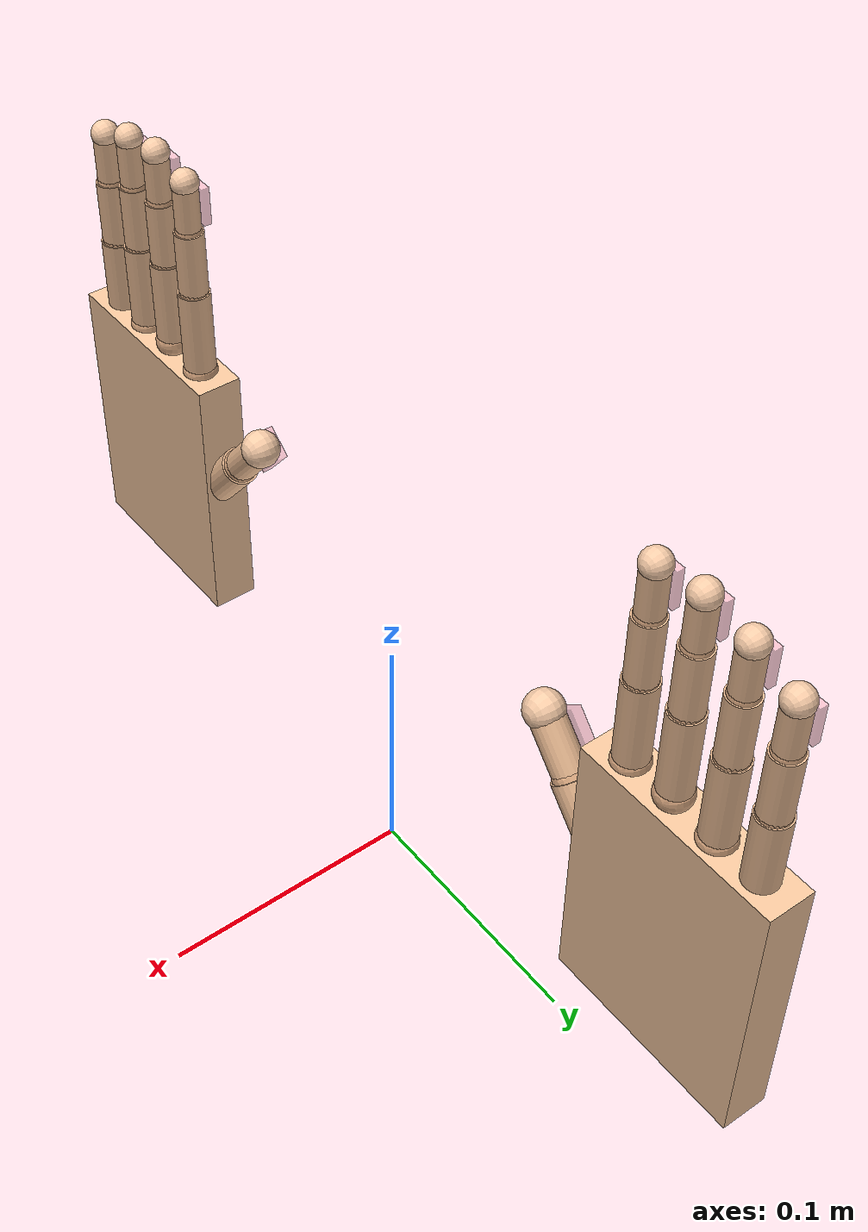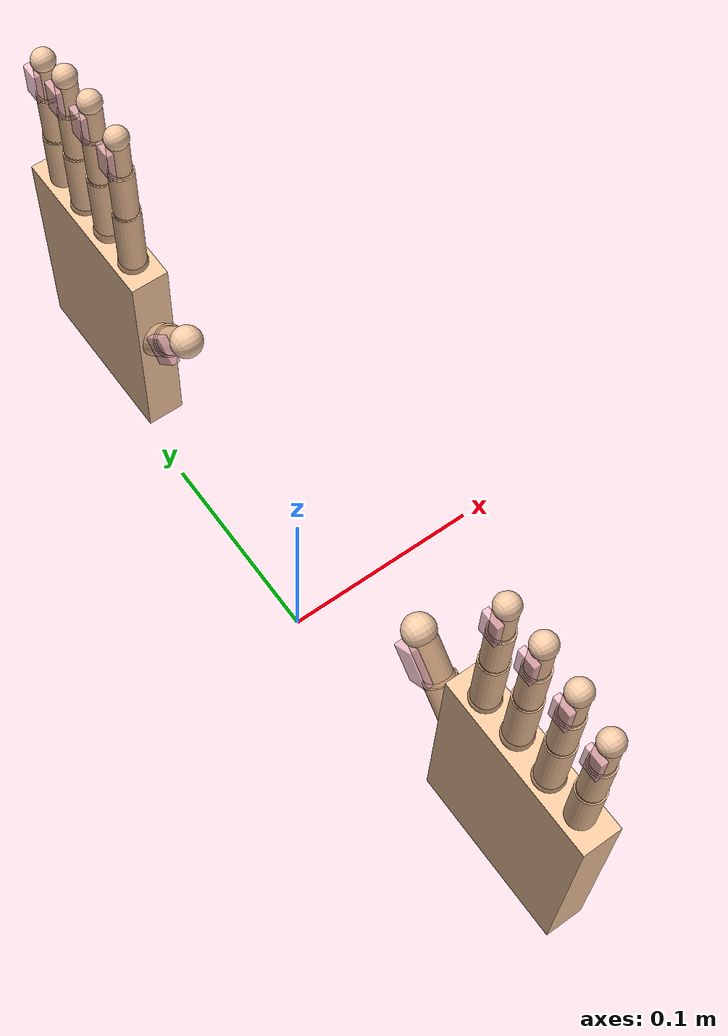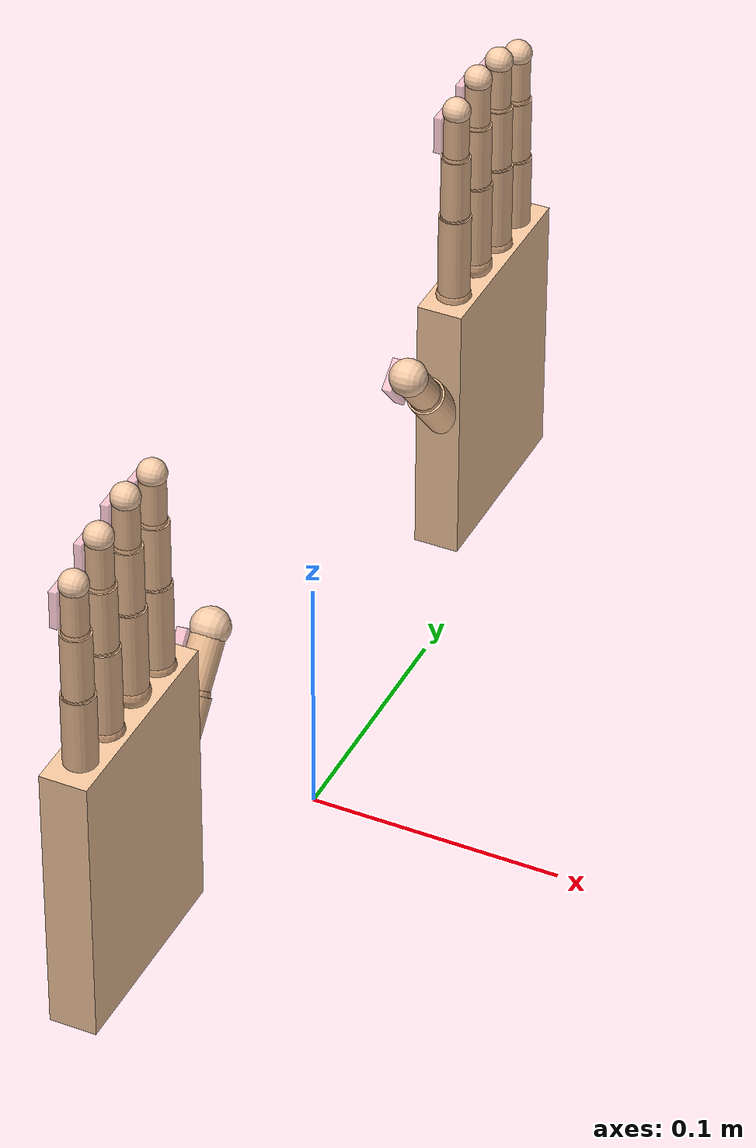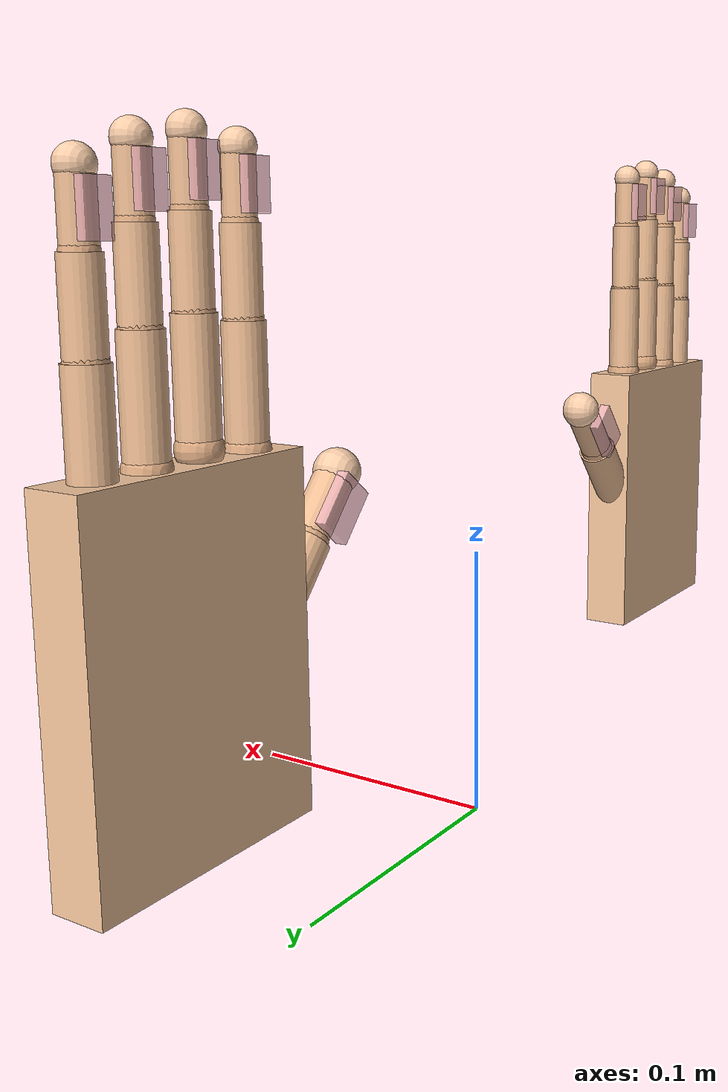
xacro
<?xml version="1.0"?>
<robot name="dual_robotic_hands" xmlns:xacro="http://wiki.ros.org/xacro">

  <!-- Palm dimensions -->
  <xacro:property name="hand_width"  value="0.082" />
  <xacro:property name="hand_length" value="0.110" />
  <xacro:property name="hand_height" value="0.018" />

  <!-- Finger segment lengths -->
  <xacro:property name="proximal_length" value="0.036" />
  <xacro:property name="middle_length"   value="0.026" />
  <xacro:property name="distal_length"   value="0.020" />

  <!-- Finger radii (tapers toward tip) -->
  <xacro:property name="finger_r0" value="0.0068" />   <!-- base knuckle -->
  <xacro:property name="finger_r1" value="0.0062" />   <!-- proximal segment -->
  <xacro:property name="finger_r2" value="0.0056" />   <!-- middle segment -->
  <xacro:property name="finger_r3" value="0.0048" />   <!-- distal segment -->

  <!-- Thumb dimensions -->
  <xacro:property name="thumb_proximal_length" value="0.032" />
  <xacro:property name="thumb_distal_length"   value="0.024" />
  <xacro:property name="thumb_r0" value="0.0082" />
  <xacro:property name="thumb_r1" value="0.0075" />
  <xacro:property name="thumb_r2" value="0.0064" />

  <!-- Materials — skin tones with red nail polish -->
  <material name="skin_palm">
    <color rgba="0.96 0.78 0.62 1.0"/>
  </material>
  <material name="skin_finger">
    <color rgba="0.93 0.74 0.58 1.0"/>
  </material>
  <material name="skin_knuckle">
    <color rgba="0.88 0.68 0.52 1.0"/>
  </material>
  <material name="skin_tip">
    <color rgba="0.97 0.80 0.66 1.0"/>
  </material>
  <material name="skin_nail">
    <color rgba="1.0 0.75 0.80 0.7"/>
  </material>

  <!-- World link -->
  <link name="world">
    <inertial>
      <mass value="0.001"/>
      <inertia ixx="0.000001" ixy="0" ixz="0" iyy="0.000001" iyz="0" izz="0.000001"/>
      <origin xyz="0 0 0" rpy="0 0 0"/>
    </inertial>
  </link>

  <xacro:macro name="finger" params="prefix parent_link x_pos y_pos z_pos rotation axis_z">

    <!-- Proximal phalanx -->
    <link name="${prefix}_proximal">
      <!-- Knuckle sphere at attachment point -->
      <visual>
        <geometry><sphere radius="${finger_r0}"/></geometry>
        <material name="skin_knuckle"/>
        <origin xyz="0 0 0" rpy="0 0 0"/>
      </visual>
      <!-- Main cylinder body -->
      <visual>
        <geometry><cylinder radius="${finger_r1}" length="${proximal_length}"/></geometry>
        <material name="skin_finger"/>
        <origin xyz="${proximal_length/2} 0 0" rpy="0 1.5708 0"/>
      </visual>
      <collision>
        <geometry><box size="${proximal_length} ${finger_r1*2} ${finger_r1*2}"/></geometry>
        <origin xyz="${proximal_length/2} 0 0" rpy="0 0 0"/>
      </collision>
      <inertial>
        <mass value="0.05"/>
        <inertia ixx="0.0001" ixy="0" ixz="0" iyy="0.0001" iyz="0" izz="0.0001"/>
        <origin xyz="${proximal_length/2} 0 0" rpy="0 0 0"/>
      </inertial>
    </link>

    <!-- Middle phalanx -->
    <link name="${prefix}_middle">
      <!-- Inter-phalangeal knuckle -->
      <visual>
        <geometry><sphere radius="${finger_r1 * 0.92}"/></geometry>
        <material name="skin_knuckle"/>
        <origin xyz="0 0 0" rpy="0 0 0"/>
      </visual>
      <!-- Cylinder body (slightly thinner) -->
      <visual>
        <geometry><cylinder radius="${finger_r2}" length="${middle_length}"/></geometry>
        <material name="skin_finger"/>
        <origin xyz="${middle_length/2} 0 0" rpy="0 1.5708 0"/>
      </visual>
      <collision>
        <geometry><box size="${middle_length} ${finger_r2*2} ${finger_r2*2}"/></geometry>
        <origin xyz="${middle_length/2} 0 0" rpy="0 0 0"/>
      </collision>
      <inertial>
        <mass value="0.03"/>
        <inertia ixx="0.0001" ixy="0" ixz="0" iyy="0.0001" iyz="0" izz="0.0001"/>
        <origin xyz="${middle_length/2} 0 0" rpy="0 0 0"/>
      </inertial>
    </link>

    <!-- Distal phalanx (fingertip) -->
    <link name="${prefix}_distal">
      <!-- DIP knuckle -->
      <visual>
        <geometry><sphere radius="${finger_r2 * 0.90}"/></geometry>
        <material name="skin_knuckle"/>
        <origin xyz="0 0 0" rpy="0 0 0"/>
      </visual>
      <!-- Cylinder body (thinner still) -->
      <visual>
        <geometry><cylinder radius="${finger_r3}" length="${distal_length}"/></geometry>
        <material name="skin_finger"/>
        <origin xyz="${distal_length/2} 0 0" rpy="0 1.5708 0"/>
      </visual>
      <!-- Rounded fingertip sphere -->
      <visual>
        <geometry><sphere radius="${finger_r3 * 1.1}"/></geometry>
        <material name="skin_tip"/>
        <origin xyz="${distal_length} 0 0" rpy="0 0 0"/>
      </visual>
      <collision>
        <geometry><box size="${distal_length} ${finger_r3*2} ${finger_r3*2}"/></geometry>
        <origin xyz="${distal_length/2} 0 0" rpy="0 0 0"/>
      </collision>
      <inertial>
        <mass value="0.02"/>
        <inertia ixx="0.0001" ixy="0" ixz="0" iyy="0.0001" iyz="0" izz="0.0001"/>
        <origin xyz="${distal_length/2} 0 0" rpy="0 0 0"/>
      </inertial>
    </link>

    <!-- Nail — separate link so RViz2 renders it in its own color -->
    <link name="${prefix}_nail">
      <visual>
        <geometry><box size="${distal_length * 0.75} ${finger_r3 * 1.8} ${finger_r3 * 0.6}"/></geometry>
        <material name="skin_nail"/>
        <origin xyz="0 0 0" rpy="0 0 0"/>
      </visual>
      <inertial>
        <mass value="0.001"/>
        <inertia ixx="0.000001" ixy="0" ixz="0" iyy="0.000001" iyz="0" izz="0.000001"/>
        <origin xyz="0 0 0" rpy="0 0 0"/>
      </inertial>
    </link>

    <!-- Joints -->
    <joint name="${prefix}_base_joint" type="revolute">
      <parent link="${parent_link}"/>
      <child link="${prefix}_proximal"/>
      <origin xyz="${x_pos} ${y_pos} ${z_pos}" rpy="0 0 ${rotation}"/>
      <axis xyz="0 0 ${axis_z}"/>
      <limit lower="-1.57" upper="1.57" effort="10" velocity="1.0"/>
    </joint>

    <joint name="${prefix}_proximal_joint" type="revolute">
      <parent link="${prefix}_proximal"/>
      <child link="${prefix}_middle"/>
      <origin xyz="${proximal_length} 0 0" rpy="0 0 0"/>
      <axis xyz="0 1 0"/>
      <limit lower="-1.57" upper="1.57" effort="10" velocity="1.0"/>
    </joint>

    <joint name="${prefix}_middle_joint" type="revolute">
      <parent link="${prefix}_middle"/>
      <child link="${prefix}_distal"/>
      <origin xyz="${middle_length} 0 0" rpy="0 0 0"/>
      <axis xyz="0 1 0"/>
      <limit lower="-1.57" upper="1.57" effort="10" velocity="1.0"/>
    </joint>

    <joint name="${prefix}_nail_joint" type="fixed">
      <parent link="${prefix}_distal"/>
      <child link="${prefix}_nail"/>
      <origin xyz="${distal_length * 0.5} 0 ${finger_r3 * 1.2}" rpy="0 0 0"/>
    </joint>

  </xacro:macro>

  <xacro:macro name="thumb" params="prefix parent_link x_pos y_pos z_pos rotation axis_z">

    <!-- Proximal phalanx -->
    <link name="${prefix}_proximal">
      <visual>
        <geometry><sphere radius="${thumb_r0}"/></geometry>
        <material name="skin_knuckle"/>
        <origin xyz="0 0 0" rpy="0 0 0"/>
      </visual>
      <visual>
        <geometry><cylinder radius="${thumb_r1}" length="${thumb_proximal_length}"/></geometry>
        <material name="skin_finger"/>
        <origin xyz="${thumb_proximal_length/2} 0 0" rpy="0 1.5708 0"/>
      </visual>
      <collision>
        <geometry><box size="${thumb_proximal_length} ${thumb_r1*2} ${thumb_r1*2}"/></geometry>
        <origin xyz="${thumb_proximal_length/2} 0 0" rpy="0 0 0"/>
      </collision>
      <inertial>
        <mass value="0.04"/>
        <inertia ixx="0.0001" ixy="0" ixz="0" iyy="0.0001" iyz="0" izz="0.0001"/>
        <origin xyz="${thumb_proximal_length/2} 0 0" rpy="0 0 0"/>
      </inertial>
    </link>

    <!-- Distal phalanx (thumb tip) -->
    <link name="${prefix}_distal">
      <visual>
        <geometry><sphere radius="${thumb_r1 * 0.90}"/></geometry>
        <material name="skin_knuckle"/>
        <origin xyz="0 0 0" rpy="0 0 0"/>
      </visual>
      <visual>
        <geometry><cylinder radius="${thumb_r2}" length="${thumb_distal_length}"/></geometry>
        <material name="skin_finger"/>
        <origin xyz="${thumb_distal_length/2} 0 0" rpy="0 1.5708 0"/>
      </visual>
      <!-- Rounded thumb tip -->
      <visual>
        <geometry><sphere radius="${thumb_r2 * 1.15}"/></geometry>
        <material name="skin_tip"/>
        <origin xyz="${thumb_distal_length} 0 0" rpy="0 0 0"/>
      </visual>
      <collision>
        <geometry><box size="${thumb_distal_length} ${thumb_r2*2} ${thumb_r2*2}"/></geometry>
        <origin xyz="${thumb_distal_length/2} 0 0" rpy="0 0 0"/>
      </collision>
      <inertial>
        <mass value="0.025"/>
        <inertia ixx="0.0001" ixy="0" ixz="0" iyy="0.0001" iyz="0" izz="0.0001"/>
        <origin xyz="${thumb_distal_length/2} 0 0" rpy="0 0 0"/>
      </inertial>
    </link>

    <!-- Thumbnail — separate link for independent color -->
    <link name="${prefix}_nail">
      <visual>
        <geometry><box size="${thumb_distal_length * 0.75} ${thumb_r2 * 2.0} ${thumb_r2 * 0.6}"/></geometry>
        <material name="skin_nail"/>
        <origin xyz="0 0 0" rpy="0 0 0"/>
      </visual>
      <inertial>
        <mass value="0.001"/>
        <inertia ixx="0.000001" ixy="0" ixz="0" iyy="0.000001" iyz="0" izz="0.000001"/>
        <origin xyz="0 0 0" rpy="0 0 0"/>
      </inertial>
    </link>

    <joint name="${prefix}_base_joint" type="revolute">
      <parent link="${parent_link}"/>
      <child link="${prefix}_proximal"/>
      <origin xyz="${x_pos} ${y_pos} ${z_pos}" rpy="0 0 ${rotation}"/>
      <axis xyz="0 0 ${axis_z}"/>
      <limit lower="-1.57" upper="1.57" effort="10" velocity="1.0"/>
    </joint>

    <joint name="${prefix}_proximal_joint" type="revolute">
      <parent link="${prefix}_proximal"/>
      <child link="${prefix}_distal"/>
      <origin xyz="${thumb_proximal_length} 0 0" rpy="0 0 0"/>
      <axis xyz="0 1 0"/>
      <limit lower="-1.57" upper="1.57" effort="10" velocity="1.0"/>
    </joint>

    <joint name="${prefix}_nail_joint" type="fixed">
      <parent link="${prefix}_distal"/>
      <child link="${prefix}_nail"/>
      <origin xyz="${thumb_distal_length * 0.5} 0 ${thumb_r2 * 1.2}" rpy="0 0 0"/>
    </joint>

  </xacro:macro>

  <xacro:macro name="hand_assembly" params="side y_offset mirror">

    <!-- Palm: main box body -->
    <link name="${side}_hand_base">
      <!-- Main palm -->
      <visual>
        <geometry><box size="${hand_length} ${hand_width} ${hand_height}"/></geometry>
        <material name="skin_palm"/>
        <origin xyz="0 0 0" rpy="0 0 0"/>
      </visual>
      <collision>
        <geometry><box size="${hand_length} ${hand_width} ${hand_height}"/></geometry>
        <origin xyz="0 0 0" rpy="0 0 0"/>
      </collision>
      <inertial>
        <mass value="0.5"/>
        <inertia ixx="0.001" ixy="0" ixz="0" iyy="0.001" iyz="0" izz="0.001"/>
        <origin xyz="0 0 0" rpy="0 0 0"/>
      </inertial>
    </link>

    <joint name="${side}_orientation_joint" type="fixed">
      <parent link="world"/>
      <child link="${side}_hand_base"/>
      <origin xyz="0 ${y_offset} 0.1" rpy="0 -1.5708 0"/>
    </joint>

    <!-- Fingers: x_pos places them at the front edge of the palm -->
    <xacro:thumb  prefix="${side}_thumb"  parent_link="${side}_hand_base" x_pos="0.00"  y_pos="${mirror * -0.032}" z_pos="0.0" rotation="${mirror * -0.7}" axis_z="${mirror}"/>
    <xacro:finger prefix="${side}_index"  parent_link="${side}_hand_base" x_pos="0.055" y_pos="${mirror * -0.028}" z_pos="0.0" rotation="0" axis_z="${mirror}"/>
    <xacro:finger prefix="${side}_middle" parent_link="${side}_hand_base" x_pos="0.058" y_pos="${mirror * -0.009}" z_pos="0.0" rotation="0" axis_z="${mirror}"/>
    <xacro:finger prefix="${side}_ring"   parent_link="${side}_hand_base" x_pos="0.055" y_pos="${mirror *  0.010}" z_pos="0.0" rotation="0" axis_z="${mirror}"/>
    <xacro:finger prefix="${side}_pinky"  parent_link="${side}_hand_base" x_pos="0.048" y_pos="${mirror *  0.028}" z_pos="0.0" rotation="0" axis_z="${mirror}"/>

  </xacro:macro>

  <xacro:hand_assembly side="left"  y_offset=" 0.15" mirror="1"/>
  <xacro:hand_assembly side="right" y_offset="-0.15" mirror="-1"/>

</robot>
